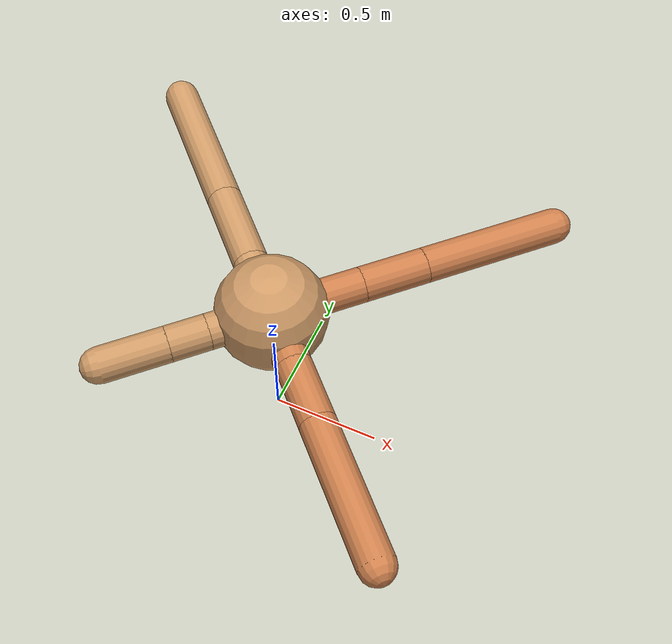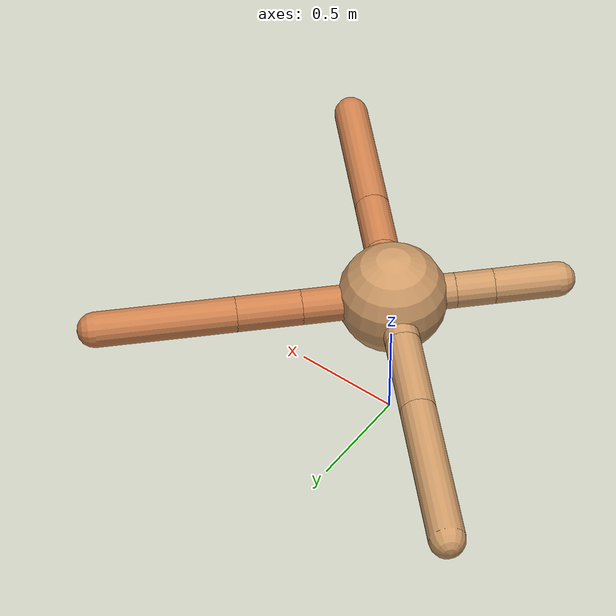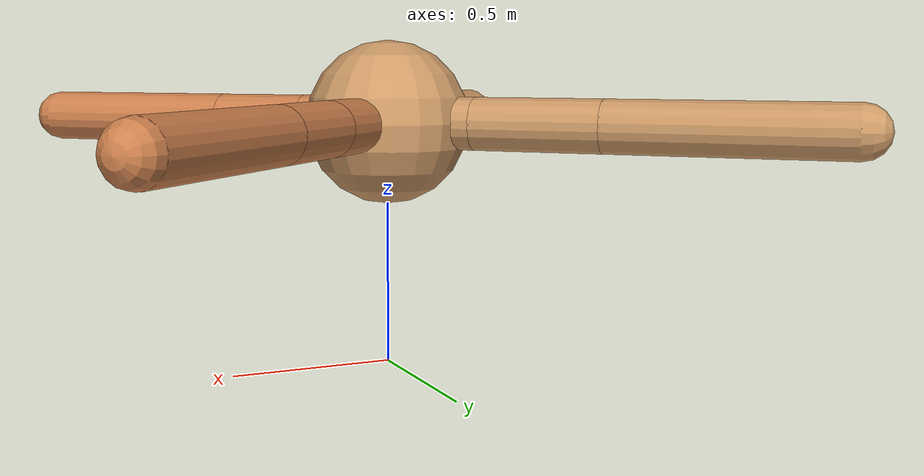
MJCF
<mujoco model="ant">
  <compiler angle="degree" coordinate="local" inertiafromgeom="true" />
  <option integrator="RK4" timestep="0.01" />
  <custom>
    <numeric data="0.0 0.0 0.55 1.0 0.0 0.0 0.0 0.0 1.0 0.0 -1.0 0.0 -1.0 0.0 1.0" name="init_qpos" />
  </custom>
  <default>
    <joint armature="1" damping="1" limited="true" />
    <geom conaffinity="0" condim="3" density="5.0" friction="1.5 0.1 0.1" margin="0.01" rgba="0.8 0.6 0.4 1" />
  </default>
  <worldbody>
    <body name="torso" pos="0 0 0.75">
      <geom name="torso_geom" pos="0 0 0" size="0.25" type="sphere" />

      <body name="front_left_leg" pos="0 0 0">
        <geom fromto="0.0 0.0 0.0 0.29101428207460006 0.29101428207460006 0.0" name="aux_1_geom" size="0.08" type="capsule" rgba=".8 .5 .3 1" />
        <body name="aux_1" pos="0.29101428207460006 0.29101428207460006 0.0">
          <joint axis="0 0 1" name="hip_1" pos="0.0 0.0 0.0" range="-40 40" type="hinge" />
          <geom fromto="0.0 0.0 0.0 0.2082941152107461 0.2082941152107461 0.0" name="left_leg_geom" size="0.08" type="capsule" rgba=".8 .5 .3 1" />
          <body pos="0.2082941152107461 0.2082941152107461 0.0" name="front_left_foot">
            <joint axis="-1 1 0" name="ankle_1" pos="0.0 0.0 0.0" range="30 100" type="hinge" />
            <geom fromto="0.0 0.0 0.0 0.44556922992061754 0.44556922992061754 0.0" name="left_ankle_geom" size="0.08" type="capsule" rgba=".8 .5 .3 1" />
          </body>
        </body>
      </body>
      <body name="front_right_leg" pos="0 0 0">
        <geom fromto="0.0 0.0 0.0 -0.2 0.2 0.0" name="aux_2_geom" size="0.08" type="capsule" />
        <body name="aux_2" pos="-0.2 0.2 0.0">
          <joint axis="0 0 1" name="hip_2" pos="0.0 0.0 0.0" range="-40 40" type="hinge" />
          <geom fromto="0.0 0.0 0.0 -0.27428455474315827 0.27428455474315827 0.0" name="right_leg_geom" size="0.08" type="capsule" />
          <body pos="-0.27428455474315827 0.27428455474315827 0.0" name="front_right_foot">
            <joint axis="1 1 0" name="ankle_2" pos="0.0 0.0 0.0" range="-100 -30" type="hinge" />
            <geom fromto="0.0 0.0 0.0 -0.4932259290143575 0.4932259290143575 0.0" name="right_ankle_geom" size="0.08" type="capsule" />
          </body>
        </body>
      </body>
      <body name="left_back_leg" pos="0 0 0">
        <geom fromto="0.0 0.0 0.0 -0.2 -0.2 0.0" name="aux_3_geom" size="0.08" type="capsule" />
        <body name="aux_3" pos="-0.2 -0.2 0.0">
          <joint axis="0 0 1" name="hip_3" pos="0.0 0.0 0.0" range="-40 40" type="hinge" />
          <geom fromto="0.0 0.0 0.0 -0.12397607741002806 -0.12397607741002806 0.0" name="back_leg_geom" size="0.08" type="capsule" />
          <body pos="-0.12397607741002806 -0.12397607741002806 0.0" name="left_back_foot">
            <joint axis="-1 1 0" name="ankle_3" pos="0.0 0.0 0.0" range="-100 -30" type="hinge" />
            <geom fromto="0.0 0.0 0.0 -0.2098481238590665 -0.2098481238590665 0.0" name="third_ankle_geom" size="0.08" type="capsule" />
          </body>
        </body>
      </body>
      <body name="right_back_leg" pos="0 0 0">
        <geom fromto="0.0 0.0 0.0 0.2 -0.2 0.0" name="aux_4_geom" size="0.08" type="capsule" rgba=".8 .5 .3 1" />
        <body name="aux_4" pos="0.2 -0.2 0.0">
          <joint axis="0 0 1" name="hip_4" pos="0.0 0.0 0.0" range="-40 40" type="hinge" />
          <geom fromto="0.0 0.0 0.0 0.20497235115268736 -0.20497235115268736 0.0" name="rightback_leg_geom" size="0.08" type="capsule" rgba=".8 .5 .3 1" />
          <body pos="0.20497235115268736 -0.20497235115268736 0.0" name="right_back_foot">
            <joint axis="1 1 0" name="ankle_4" pos="0.0 0.0 0.0" range="30 100" type="hinge" />
            <geom fromto="0.0 0.0 0.0 0.4508670925527242 -0.4508670925527242 0.0" name="fourth_ankle_geom" size="0.08" type="capsule" rgba=".8 .5 .3 1" />
          </body>
        </body>
      </body>
    </body>
  </worldbody>
  <actuator>
    <motor ctrllimited="true" ctrlrange="-1.0 1.0" joint="hip_4" gear="150" />
    <motor ctrllimited="true" ctrlrange="-1.0 1.0" joint="ankle_4" gear="150" />
    <motor ctrllimited="true" ctrlrange="-1.0 1.0" joint="hip_1" gear="150" />
    <motor ctrllimited="true" ctrlrange="-1.0 1.0" joint="ankle_1" gear="150" />
    <motor ctrllimited="true" ctrlrange="-1.0 1.0" joint="hip_2" gear="150" />
    <motor ctrllimited="true" ctrlrange="-1.0 1.0" joint="ankle_2" gear="150" />
    <motor ctrllimited="true" ctrlrange="-1.0 1.0" joint="hip_3" gear="150" />
    <motor ctrllimited="true" ctrlrange="-1.0 1.0" joint="ankle_3" gear="150" />
  </actuator>
</mujoco>
